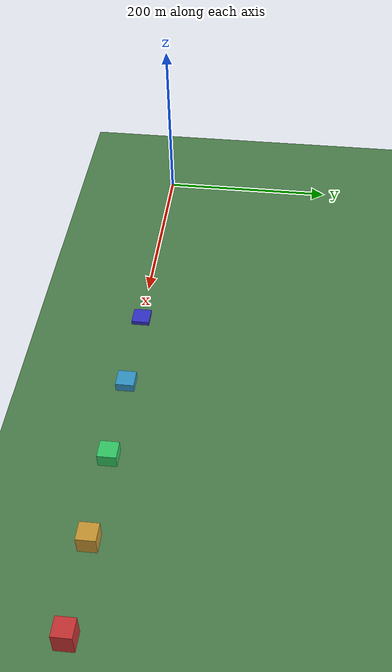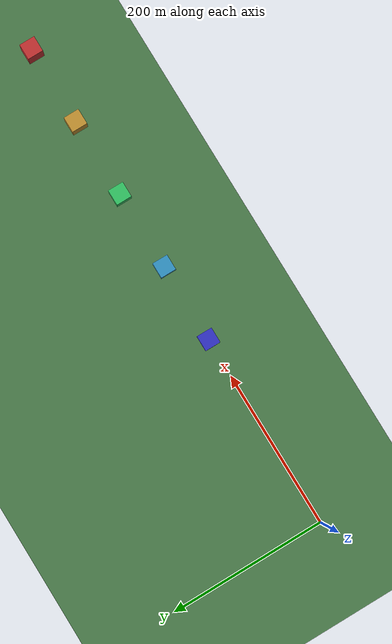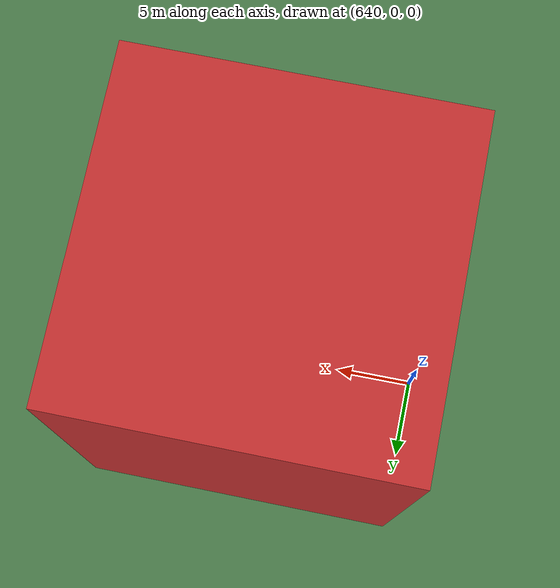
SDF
<sdf version="1.7">
 <world name="mini_talon_airspeed_lidar_wind_staircase">
  <physics name="1ms" type="ignore">
   <max_step_size>0.001</max_step_size>
   <real_time_factor>1</real_time_factor>
  </physics>
  <plugin filename="gz-sim-physics-system" name="gz::sim::systems::Physics"/>
  <plugin filename="gz-sim-user-commands-system" name="gz::sim::systems::UserCommands"/>
  <plugin filename="gz-sim-scene-broadcaster-system" name="gz::sim::systems::SceneBroadcaster"/>
  <plugin filename="gz-sim-imu-system" name="gz::sim::systems::Imu"/>
  <plugin filename="gz-sim-navsat-system" name="gz::sim::systems::NavSat"/>
  <plugin filename="gz-sim-air-speed-system" name="gz::sim::systems::AirSpeed"/>
  <plugin filename="gz-sim-sensors-system" name="gz::sim::systems::Sensors">
   <render_engine>ogre2</render_engine>
  </plugin>
  <wind><linear_velocity>5 1 0</linear_velocity></wind>
  <plugin filename="gz-sim-wind-effects-system" name="gz::sim::systems::WindEffects">
   <force_approximation_scaling_factor>0.001</force_approximation_scaling_factor>
   <horizontal>
    <magnitude>
     <time_for_rise>10</time_for_rise>
     <sin><amplitude_percent>0</amplitude_percent></sin>
     <noise type="gaussian"><mean>0</mean><stddev>0</stddev></noise>
    </magnitude>
    <direction>
     <time_for_rise>10</time_for_rise>
     <sin><amplitude>0</amplitude></sin>
     <noise type="gaussian"><mean>0</mean><stddev>0</stddev></noise>
    </direction>
   </horizontal>
   <vertical><noise type="gaussian"><mean>0</mean><stddev>0</stddev></noise></vertical>
  </plugin>
  <scene><ambient>1.0 1.0 1.0</ambient><background>0.8 0.8 0.8</background></scene>
  <spherical_coordinates>
   <latitude_deg>-35.363262</latitude_deg>
   <longitude_deg>149.165237</longitude_deg>
   <elevation>584</elevation>
   <heading_deg>0</heading_deg>
   <surface_model>EARTH_WGS84</surface_model>
  </spherical_coordinates>
  <light type="directional" name="sun">
   <pose>0 0 10 0 0 0</pose>
   <diffuse>0.8 0.8 0.8 1</diffuse>
   <specular>0.8 0.8 0.8 1</specular>
   <attenuation>
    <range>1000</range>
    <constant>0.9</constant>
    <linear>0.01</linear>
    <quadratic>0.001</quadratic>
   </attenuation>
   <direction>-0.5 0.1 -0.9</direction>
  </light>
  <model name="axes">
   <static>1</static>
   <link name="link">
    <visual name="r">
     <cast_shadows>0</cast_shadows>
     <pose>5 0 0.1 0 0 0</pose>
     <geometry><box><size>10 0.01 0.01</size></box></geometry>
     <material>
      <ambient>1 0 0 1</ambient>
      <diffuse>1 0 0 1</diffuse>
      <emissive>1 0 0 1</emissive>
      <specular>0.5 0.5 0.5 1</specular>
     </material>
    </visual>
    <visual name="g">
     <cast_shadows>0</cast_shadows>
     <pose>0 5 0.1 0 0 0</pose>
     <geometry><box><size>0.01 10 0.01</size></box></geometry>
     <material>
      <ambient>0 1 0 1</ambient>
      <diffuse>0 1 0 1</diffuse>
      <emissive>0 1 0 1</emissive>
      <specular>0.5 0.5 0.5 1</specular>
     </material>
    </visual>
    <visual name="b">
     <cast_shadows>0</cast_shadows>
     <pose>0 0 5.1 0 0 0</pose>
     <geometry><box><size>0.01 0.01 10</size></box></geometry>
     <material>
      <ambient>0 0 1 1</ambient>
      <diffuse>0 0 1 1</diffuse>
      <emissive>0 0 1 1</emissive>
      <specular>0.5 0.5 0.5 1</specular>
     </material>
    </visual>
   </link>
  </model>
  <model name="ground_plane">
   <static>true</static>
   <link name="link">
    <collision name="collision">
     <geometry><plane><normal>0 0 1</normal><size>5000 5000</size></plane></geometry>
    </collision>
    <visual name="visual">
     <geometry><plane><normal>0 0 1</normal><size>5000 5000</size></plane></geometry>
     <material>
      <ambient>0.3 0.5 0.3 1</ambient>
      <diffuse>0.3 0.5 0.3 1</diffuse>
      <specular>0.1 0.1 0.1 1</specular>
     </material>
    </visual>
   </link>
  </model>
  <model name="platform_1">
   <static>true</static>
   <pose>250 0 2.5 0 0 0</pose>
   <link name="link">
    <collision name="collision"><geometry><box><size>20 20 5</size></box></geometry></collision>
    <visual name="visual">
     <geometry><box><size>20 20 5</size></box></geometry>
     <material>
      <ambient>0.2 0.2 0.8 1</ambient>
      <diffuse>0.2 0.2 0.8 1</diffuse>
      <specular>0.1 0.1 0.1 1</specular>
     </material>
    </visual>
   </link>
  </model>
  <model name="platform_2">
   <static>true</static>
   <pose>350 0 5 0 0 0</pose>
   <link name="link">
    <collision name="collision"><geometry><box><size>20 20 10</size></box></geometry></collision>
    <visual name="visual">
     <geometry><box><size>20 20 10</size></box></geometry>
     <material>
      <ambient>0.2 0.6 0.8 1</ambient>
      <diffuse>0.2 0.6 0.8 1</diffuse>
      <specular>0.1 0.1 0.1 1</specular>
     </material>
    </visual>
   </link>
  </model>
  <model name="platform_3">
   <static>true</static>
   <pose>450 0 7.5 0 0 0</pose>
   <link name="link">
    <collision name="collision"><geometry><box><size>20 20 15</size></box></geometry></collision>
    <visual name="visual">
     <geometry><box><size>20 20 15</size></box></geometry>
     <material>
      <ambient>0.2 0.8 0.4 1</ambient>
      <diffuse>0.2 0.8 0.4 1</diffuse>
      <specular>0.1 0.1 0.1 1</specular>
     </material>
    </visual>
   </link>
  </model>
  <model name="platform_4">
   <static>true</static>
   <pose>550 0 10 0 0 0</pose>
   <link name="link">
    <collision name="collision"><geometry><box><size>20 20 20</size></box></geometry></collision>
    <visual name="visual">
     <geometry><box><size>20 20 20</size></box></geometry>
     <material>
      <ambient>0.8 0.6 0.2 1</ambient>
      <diffuse>0.8 0.6 0.2 1</diffuse>
      <specular>0.1 0.1 0.1 1</specular>
     </material>
    </visual>
   </link>
  </model>
  <model name="platform_5">
   <static>true</static>
   <pose>650 0 12.5 0 0 0</pose>
   <link name="link">
    <collision name="collision"><geometry><box><size>20 20 25</size></box></geometry></collision>
    <visual name="visual">
     <geometry><box><size>20 20 25</size></box></geometry>
     <material>
      <ambient>0.8 0.2 0.2 1</ambient>
      <diffuse>0.8 0.2 0.2 1</diffuse>
      <specular>0.1 0.1 0.1 1</specular>
     </material>
    </visual>
   </link>
  </model>
 </world>
</sdf>
